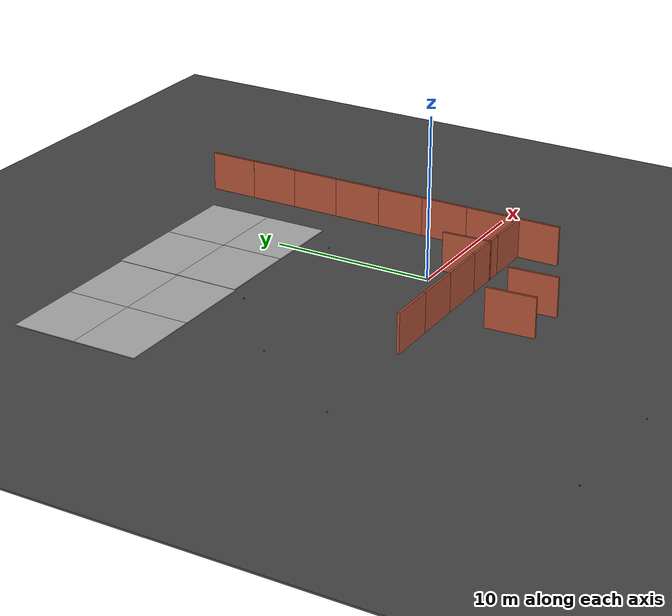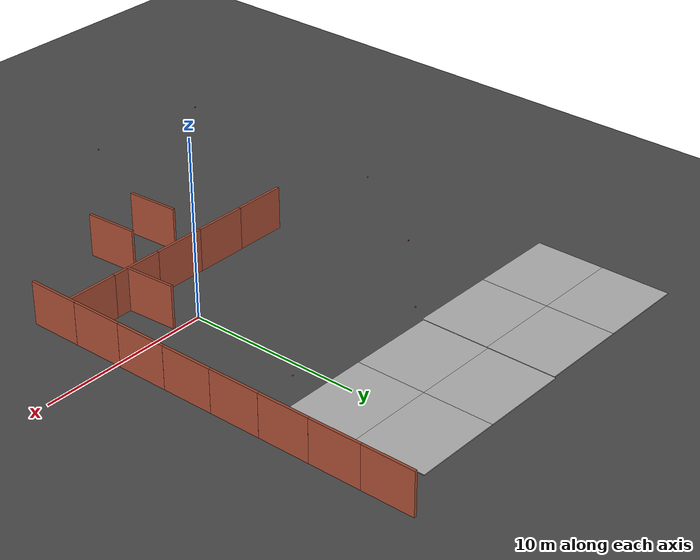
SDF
<sdf version="1.6">
 <world name="default">
  <scene>
   <sky><clouds><speed>5</speed></clouds></sky>
   <ambient>0.4 0.4 0.4 1</ambient>
   <background>0.7 0.7 0.7 1</background>
   <shadows>1</shadows>
  </scene>
  <light name="sun" type="directional">
   <pose>0 0 10 0 -0 0</pose>
   <diffuse>0.8 0.8 0.8 1</diffuse>
   <specular>0.2 0.2 0.2 1</specular>
   <attenuation>
    <range>1000</range>
    <constant>0.9</constant>
    <linear>0.01</linear>
    <quadratic>0.001</quadratic>
   </attenuation>
   <direction>-0.5 0.1 -0.9</direction>
  </light>
  <model name="ground_plane">
   <static>1</static>
   <link name="link">
    <collision name="collision">
     <geometry><plane><normal>0 0 1</normal><size>100 100</size></plane></geometry>
     <surface><friction><ode><mu>100</mu><mu2>50</mu2></ode></friction></surface>
    </collision>
    <visual name="visual">
     <cast_shadows>0</cast_shadows>
     <geometry><plane><normal>0 0 1</normal><size>100 100</size></plane></geometry>
     <material>
      <script><uri>file://media/materials/scripts/gazebo.material</uri><name>Gazebo/Grey</name></script>
     </material>
    </visual>
   </link>
  </model>
  <gravity>0 0 -9.8</gravity>
  <magnetic_field>6e-06 2.3e-05 -4.2e-05</magnetic_field>
  <atmosphere type="adiabatic"/>
  <physics name="default_physics" default="0" type="ode">
   <max_step_size>0.01</max_step_size>
   <real_time_factor>1</real_time_factor>
   <real_time_update_rate>100</real_time_update_rate>
  </physics>
  <scene><ambient>0.4 0.4 0.4 1</ambient><background>0.7 0.7 0.7 1</background><shadows>1</shadows></scene>
  <spherical_coordinates>
   <surface_model>EARTH_WGS84</surface_model>
   <latitude_deg>0</latitude_deg>
   <longitude_deg>0</longitude_deg>
   <elevation>0</elevation>
   <heading_deg>0</heading_deg>
  </spherical_coordinates>
  <model name="wall_brick_3m_clone_0">
   <pose>5.57817 -4.2114 0 0 -0 1.57</pose>
   <link name="Wall_2">
    <collision name="Wall_2_Collision">
     <geometry><box><size>3 0.15 2.5</size></box></geometry>
     <pose>0 0 1.25 0 -0 0</pose>
    </collision>
    <visual name="Wall_2_Visual">
     <pose>0 0 1.25 0 -0 0</pose>
     <geometry><box><size>3 0.15 2.5</size></box></geometry>
     <material>
      <script><uri>file://media/materials/scripts/gazebo.material</uri><name>Gazebo/Bricks</name></script>
      <ambient>1 1 1 1</ambient>
     </material>
     <meta><layer>0</layer></meta>
    </visual>
   </link>
   <static>1</static>
  </model>
  <model name="wall_brick_3m_clone_1">
   <pose>4.12513 -3.1 0 0 -0 0</pose>
   <link name="Wall_2">
    <collision name="Wall_2_Collision">
     <geometry><box><size>3 0.15 2.5</size></box></geometry>
     <pose>0 0 1.25 0 -0 0</pose>
    </collision>
    <visual name="Wall_2_Visual">
     <pose>0 0 1.25 0 -0 0</pose>
     <geometry><box><size>3 0.15 2.5</size></box></geometry>
     <material>
      <script><uri>file://media/materials/scripts/gazebo.material</uri><name>Gazebo/Bricks</name></script>
      <ambient>1 1 1 1</ambient>
     </material>
     <meta><layer>0</layer></meta>
    </visual>
   </link>
   <static>1</static>
  </model>
  <model name="wall_brick_3m_clone_1_clone">
   <pose>1.12513 -3.1 0 0 -0 0</pose>
   <link name="Wall_2">
    <collision name="Wall_2_Collision">
     <geometry><box><size>3 0.15 2.5</size></box></geometry>
     <pose>0 0 1.25 0 -0 0</pose>
    </collision>
    <visual name="Wall_2_Visual">
     <pose>0 0 1.25 0 -0 0</pose>
     <geometry><box><size>3 0.15 2.5</size></box></geometry>
     <material>
      <script><uri>file://media/materials/scripts/gazebo.material</uri><name>Gazebo/Bricks</name></script>
      <ambient>1 1 1 1</ambient>
     </material>
     <meta><layer>0</layer></meta>
    </visual>
   </link>
   <static>1</static>
  </model>
  <model name="wall_brick_3m_clone_1_clone_0">
   <pose>-1.87487 -3.1 0 0 -0 0</pose>
   <link name="Wall_2">
    <collision name="Wall_2_Collision">
     <geometry><box><size>3 0.15 2.5</size></box></geometry>
     <pose>0 0 1.25 0 -0 0</pose>
    </collision>
    <visual name="Wall_2_Visual">
     <pose>0 0 1.25 0 -0 0</pose>
     <geometry><box><size>3 0.15 2.5</size></box></geometry>
     <material>
      <script><uri>file://media/materials/scripts/gazebo.material</uri><name>Gazebo/Bricks</name></script>
      <ambient>1 1 1 1</ambient>
     </material>
     <meta><layer>0</layer></meta>
    </visual>
   </link>
   <static>1</static>
  </model>
  <model name="wall_brick_3m_clone_1_clone_1">
   <pose>-4.87487 -3.1 0 0 -0 0</pose>
   <link name="Wall_2">
    <collision name="Wall_2_Collision">
     <geometry><box><size>3 0.15 2.5</size></box></geometry>
     <pose>0 0 1.25 0 -0 0</pose>
    </collision>
    <visual name="Wall_2_Visual">
     <pose>0 0 1.25 0 -0 0</pose>
     <geometry><box><size>3 0.15 2.5</size></box></geometry>
     <material>
      <script><uri>file://media/materials/scripts/gazebo.material</uri><name>Gazebo/Bricks</name></script>
      <ambient>1 1 1 1</ambient>
     </material>
     <meta><layer>0</layer></meta>
    </visual>
   </link>
   <static>1</static>
  </model>
  <model name="wall_brick_3m_clone_1_clone_1_clone">
   <pose>-7.87487 -3.11682 0 0 -0 0</pose>
   <link name="Wall_2">
    <collision name="Wall_2_Collision">
     <geometry><box><size>3 0.15 2.5</size></box></geometry>
     <pose>0 0 1.25 0 -0 0</pose>
    </collision>
    <visual name="Wall_2_Visual">
     <pose>0 0 1.25 0 -0 0</pose>
     <geometry><box><size>3 0.15 2.5</size></box></geometry>
     <material>
      <script><uri>file://media/materials/scripts/gazebo.material</uri><name>Gazebo/Bricks</name></script>
      <ambient>1 1 1 1</ambient>
     </material>
     <meta><layer>0</layer></meta>
    </visual>
   </link>
   <static>1</static>
  </model>
  <model name="wall_brick_3m_clone_0_clone">
   <pose>5.57817 -1.21128 0 0 -0 1.57</pose>
   <link name="Wall_2">
    <collision name="Wall_2_Collision">
     <geometry><box><size>3 0.15 2.5</size></box></geometry>
     <pose>0 0 1.25 0 -0 0</pose>
    </collision>
    <visual name="Wall_2_Visual">
     <pose>0 0 1.25 0 -0 0</pose>
     <geometry><box><size>3 0.15 2.5</size></box></geometry>
     <material>
      <script><uri>file://media/materials/scripts/gazebo.material</uri><name>Gazebo/Bricks</name></script>
      <ambient>1 1 1 1</ambient>
     </material>
     <meta><layer>0</layer></meta>
    </visual>
   </link>
   <static>1</static>
  </model>
  <model name="wall_brick_3m_clone_0_clone_clone">
   <pose>5.57817 1.78884 0 0 -0 1.57</pose>
   <link name="Wall_2">
    <collision name="Wall_2_Collision">
     <geometry><box><size>3 0.15 2.5</size></box></geometry>
     <pose>0 0 1.25 0 -0 0</pose>
    </collision>
    <visual name="Wall_2_Visual">
     <pose>0 0 1.25 0 -0 0</pose>
     <geometry><box><size>3 0.15 2.5</size></box></geometry>
     <material>
      <script><uri>file://media/materials/scripts/gazebo.material</uri><name>Gazebo/Bricks</name></script>
      <ambient>1 1 1 1</ambient>
     </material>
     <meta><layer>0</layer></meta>
    </visual>
   </link>
   <static>1</static>
  </model>
  <model name="wall_brick_3m_clone_0_clone_clone_0">
   <pose>5.57817 4.78896 0 0 -0 1.57</pose>
   <link name="Wall_2">
    <collision name="Wall_2_Collision">
     <geometry><box><size>3 0.15 2.5</size></box></geometry>
     <pose>0 0 1.25 0 -0 0</pose>
    </collision>
    <visual name="Wall_2_Visual">
     <pose>0 0 1.25 0 -0 0</pose>
     <geometry><box><size>3 0.15 2.5</size></box></geometry>
     <material>
      <script><uri>file://media/materials/scripts/gazebo.material</uri><name>Gazebo/Bricks</name></script>
      <ambient>1 1 1 1</ambient>
     </material>
     <meta><layer>0</layer></meta>
    </visual>
   </link>
   <static>1</static>
  </model>
  <model name="wall_brick_3m_clone_0_clone_clone_0_clone">
   <pose>5.57817 7.78908 0 0 -0 1.57</pose>
   <link name="Wall_2">
    <collision name="Wall_2_Collision">
     <geometry><box><size>3 0.15 2.5</size></box></geometry>
     <pose>0 0 1.25 0 -0 0</pose>
    </collision>
    <visual name="Wall_2_Visual">
     <pose>0 0 1.25 0 -0 0</pose>
     <geometry><box><size>3 0.15 2.5</size></box></geometry>
     <material>
      <script><uri>file://media/materials/scripts/gazebo.material</uri><name>Gazebo/Bricks</name></script>
      <ambient>1 1 1 1</ambient>
     </material>
     <meta><layer>0</layer></meta>
    </visual>
   </link>
   <static>1</static>
  </model>
  <model name="wall_brick_3m_clone_0_clone_clone_0_clone_clone">
   <pose>5.57817 10.7892 0 0 -0 1.57</pose>
   <link name="Wall_2">
    <collision name="Wall_2_Collision">
     <geometry><box><size>3 0.15 2.5</size></box></geometry>
     <pose>0 0 1.25 0 -0 0</pose>
    </collision>
    <visual name="Wall_2_Visual">
     <pose>0 0 1.25 0 -0 0</pose>
     <geometry><box><size>3 0.15 2.5</size></box></geometry>
     <material>
      <script><uri>file://media/materials/scripts/gazebo.material</uri><name>Gazebo/Bricks</name></script>
      <ambient>1 1 1 1</ambient>
     </material>
     <meta><layer>0</layer></meta>
    </visual>
   </link>
   <static>1</static>
  </model>
  <model name="wall_brick_3m_clone_0_clone_clone_0_clone_clone_0">
   <pose>5.57817 13.7893 0 0 -0 1.57</pose>
   <link name="Wall_2">
    <collision name="Wall_2_Collision">
     <geometry><box><size>3 0.15 2.5</size></box></geometry>
     <pose>0 0 1.25 0 -0 0</pose>
    </collision>
    <visual name="Wall_2_Visual">
     <pose>0 0 1.25 0 -0 0</pose>
     <geometry><box><size>3 0.15 2.5</size></box></geometry>
     <material>
      <script><uri>file://media/materials/scripts/gazebo.material</uri><name>Gazebo/Bricks</name></script>
      <ambient>1 1 1 1</ambient>
     </material>
     <meta><layer>0</layer></meta>
    </visual>
   </link>
   <static>1</static>
  </model>
  <model name="wall_brick_3m_clone_0_clone_clone_0_clone_clone_0_clone">
   <pose>5.57817 16.7894 0 0 -0 1.57</pose>
   <link name="Wall_2">
    <collision name="Wall_2_Collision">
     <geometry><box><size>3 0.15 2.5</size></box></geometry>
     <pose>0 0 1.25 0 -0 0</pose>
    </collision>
    <visual name="Wall_2_Visual">
     <pose>0 0 1.25 0 -0 0</pose>
     <geometry><box><size>3 0.15 2.5</size></box></geometry>
     <material>
      <script><uri>file://media/materials/scripts/gazebo.material</uri><name>Gazebo/Bricks</name></script>
      <ambient>1 1 1 1</ambient>
     </material>
     <meta><layer>0</layer></meta>
    </visual>
   </link>
   <static>1</static>
  </model>
  <model name="asphalt_plane">
   <static>1</static>
   <link name="link">
    <collision name="collision"><geometry><box><size>98.0294 91.5637 0.1</size></box></geometry></collision>
    <visual name="visual">
     <cast_shadows>0</cast_shadows>
     <geometry><box><size>98.0294 91.5637 0.1</size></box></geometry>
     <material>
      <script>
       <uri>model://asphalt_plane/materials/scripts</uri>
       <uri>model://asphalt_plane/materials/textures</uri>
       <name>vrc/asphalt</name>
      </script>
     </material>
    </visual>
   </link>
   <pose>-4.61095 0.882078 0 0 -0 0</pose>
  </model>
  <audio><device>default</device></audio>
  <model name="cricket_ball_clone_clone">
   <link name="link">
    <pose>0 0 0.0375 0 -0 0</pose>
    <inertial>
     <mass>0.1467</mass>
     <inertia>
      <ixx>8.25187e-05</ixx>
      <ixy>0</ixy>
      <ixz>0</ixz>
      <iyy>8.25187e-05</iyy>
      <iyz>0</iyz>
      <izz>8.25187e-05</izz>
     </inertia>
    </inertial>
    <collision name="collision">
     <geometry><sphere><radius>0.0375</radius></sphere></geometry>
     <surface>
      <contact>
       <poissons_ratio>0.347</poissons_ratio>
       <elastic_modulus>8.8e+09</elastic_modulus>
       <ode><kp>100000</kp><kd>100</kd><max_vel>100</max_vel><min_depth>0.001</min_depth></ode>
      </contact>
      <friction>
       <torsional>
        <coefficient>1</coefficient>
        <use_patch_radius>0</use_patch_radius>
        <surface_radius>0.01</surface_radius>
       </torsional>
      </friction>
     </surface>
    </collision>
    <visual name="visual">
     <geometry><sphere><radius>0.0375</radius></sphere></geometry>
     <material>
      <script><uri>file://media/materials/scripts/gazebo.material</uri><name>Gazebo/Red</name></script>
     </material>
    </visual>
    <velocity_decay><linear>0</linear><angular>0.005</angular></velocity_decay>
   </link>
   <pose>-9.39749 -17.2998 0.048986 0 -0 0</pose>
  </model>
  <model name="cricket_ball_clone_clone_0">
   <link name="link">
    <pose>0 0 0.0375 0 -0 0</pose>
    <inertial>
     <mass>0.1467</mass>
     <inertia>
      <ixx>8.25187e-05</ixx>
      <ixy>0</ixy>
      <ixz>0</ixz>
      <iyy>8.25187e-05</iyy>
      <iyz>0</iyz>
      <izz>8.25187e-05</izz>
     </inertia>
    </inertial>
    <collision name="collision">
     <geometry><sphere><radius>0.0375</radius></sphere></geometry>
     <surface>
      <contact>
       <poissons_ratio>0.347</poissons_ratio>
       <elastic_modulus>8.8e+09</elastic_modulus>
       <ode><kp>100000</kp><kd>100</kd><max_vel>100</max_vel><min_depth>0.001</min_depth></ode>
      </contact>
      <friction>
       <torsional>
        <coefficient>1</coefficient>
        <use_patch_radius>0</use_patch_radius>
        <surface_radius>0.01</surface_radius>
       </torsional>
      </friction>
     </surface>
    </collision>
    <visual name="visual">
     <geometry><sphere><radius>0.0375</radius></sphere></geometry>
     <material>
      <script><uri>file://media/materials/scripts/gazebo.material</uri><name>Gazebo/Red</name></script>
     </material>
    </visual>
    <velocity_decay><linear>0</linear><angular>0.005</angular></velocity_decay>
   </link>
   <pose>-17.1236 -17.0177 0.048986 0 -0 0</pose>
  </model>
  <model name="cricket_ball_clone_0_clone_clone_clone">
   <link name="link">
    <pose>0 0 0.0375 0 -0 0</pose>
    <inertial>
     <mass>0.1467</mass>
     <inertia>
      <ixx>8.25187e-05</ixx>
      <ixy>0</ixy>
      <ixz>0</ixz>
      <iyy>8.25187e-05</iyy>
      <iyz>0</iyz>
      <izz>8.25187e-05</izz>
     </inertia>
    </inertial>
    <collision name="collision">
     <geometry><sphere><radius>0.0375</radius></sphere></geometry>
     <surface>
      <contact>
       <poissons_ratio>0.347</poissons_ratio>
       <elastic_modulus>8.8e+09</elastic_modulus>
       <ode><kp>100000</kp><kd>100</kd><max_vel>100</max_vel><min_depth>0.001</min_depth></ode>
      </contact>
      <friction>
       <torsional>
        <coefficient>1</coefficient>
        <use_patch_radius>0</use_patch_radius>
        <surface_radius>0.01</surface_radius>
       </torsional>
      </friction>
     </surface>
    </collision>
    <visual name="visual">
     <geometry><sphere><radius>0.0375</radius></sphere></geometry>
     <material>
      <script><uri>file://media/materials/scripts/gazebo.material</uri><name>Gazebo/Red</name></script>
     </material>
    </visual>
    <velocity_decay><linear>0</linear><angular>0.005</angular></velocity_decay>
   </link>
   <pose>-16.8609 -3.13226 0.087917 1.67009 1.17549 -1.11534</pose>
  </model>
  <model name="cricket_ball_clone_4_clone_clone_clone_clone">
   <link name="link">
    <pose>0 0 0.0375 0 -0 0</pose>
    <inertial>
     <mass>0.1467</mass>
     <inertia>
      <ixx>8.25187e-05</ixx>
      <ixy>0</ixy>
      <ixz>0</ixz>
      <iyy>8.25187e-05</iyy>
      <iyz>0</iyz>
      <izz>8.25187e-05</izz>
     </inertia>
    </inertial>
    <collision name="collision">
     <geometry><sphere><radius>0.0375</radius></sphere></geometry>
     <surface>
      <contact>
       <poissons_ratio>0.347</poissons_ratio>
       <elastic_modulus>8.8e+09</elastic_modulus>
       <ode><kp>100000</kp><kd>100</kd><max_vel>100</max_vel><min_depth>0.001</min_depth></ode>
      </contact>
      <friction>
       <torsional>
        <coefficient>1</coefficient>
        <use_patch_radius>0</use_patch_radius>
        <surface_radius>0.01</surface_radius>
       </torsional>
      </friction>
     </surface>
    </collision>
    <visual name="visual">
     <geometry><sphere><radius>0.0375</radius></sphere></geometry>
     <material>
      <script><uri>file://media/materials/scripts/gazebo.material</uri><name>Gazebo/Red</name></script>
     </material>
    </visual>
    <velocity_decay><linear>0</linear><angular>0.005</angular></velocity_decay>
   </link>
   <pose>-7.68604 7.69209 0.048986 0 -0 0</pose>
  </model>
  <model name="cricket_ball_clone_4_clone_clone_clone_0_clone">
   <link name="link">
    <pose>0 0 0.0375 0 -0 0</pose>
    <inertial>
     <mass>0.1467</mass>
     <inertia>
      <ixx>8.25187e-05</ixx>
      <ixy>0</ixy>
      <ixz>0</ixz>
      <iyy>8.25187e-05</iyy>
      <iyz>0</iyz>
      <izz>8.25187e-05</izz>
     </inertia>
    </inertial>
    <collision name="collision">
     <geometry><sphere><radius>0.0375</radius></sphere></geometry>
     <surface>
      <contact>
       <poissons_ratio>0.347</poissons_ratio>
       <elastic_modulus>8.8e+09</elastic_modulus>
       <ode><kp>100000</kp><kd>100</kd><max_vel>100</max_vel><min_depth>0.001</min_depth></ode>
      </contact>
      <friction>
       <torsional>
        <coefficient>1</coefficient>
        <use_patch_radius>0</use_patch_radius>
        <surface_radius>0.01</surface_radius>
       </torsional>
      </friction>
     </surface>
    </collision>
    <visual name="visual">
     <geometry><sphere><radius>0.0375</radius></sphere></geometry>
     <material>
      <script><uri>file://media/materials/scripts/gazebo.material</uri><name>Gazebo/Red</name></script>
     </material>
    </visual>
    <velocity_decay><linear>0</linear><angular>0.005</angular></velocity_decay>
   </link>
   <pose>0.912708 7.11355 0.048986 0 -0 0</pose>
  </model>
  <model name="wall_brick_3m_clone_1_clone_1_clone_clone">
   <pose>1.60488 -1.68672 0 0 0 -1.51691</pose>
   <link name="Wall_2">
    <collision name="Wall_2_Collision">
     <geometry><box><size>3 0.15 2.5</size></box></geometry>
     <pose>0 0 1.25 0 -0 0</pose>
    </collision>
    <visual name="Wall_2_Visual">
     <pose>0 0 1.25 0 -0 0</pose>
     <geometry><box><size>3 0.15 2.5</size></box></geometry>
     <material>
      <script><uri>file://media/materials/scripts/gazebo.material</uri><name>Gazebo/Bricks</name></script>
      <ambient>1 1 1 1</ambient>
     </material>
     <meta><layer>0</layer></meta>
    </visual>
   </link>
   <static>1</static>
  </model>
  <model name="mud_box_clone_clone_clone">
   <static>1</static>
   <link name="link">
    <collision name="collision"><geometry><box><size>8 10 0.2</size></box></geometry></collision>
    <visual name="visual_1">
     <pose>-2 2.5 0 0 -0 0</pose>
     <cast_shadows>0</cast_shadows>
     <geometry><box><size>4 5 0.2</size></box></geometry>
     <material>
      <script>
       <uri>model://mud_box/materials/scripts</uri>
       <uri>model://mud_box/materials/textures</uri>
       <name>vrc/mud</name>
      </script>
     </material>
    </visual>
    <visual name="visual_2">
     <pose>2 2.5 0 0 -0 0</pose>
     <cast_shadows>0</cast_shadows>
     <geometry><box><size>4 5 0.2</size></box></geometry>
     <material>
      <script>
       <uri>model://mud_box/materials/scripts</uri>
       <uri>model://mud_box/materials/textures</uri>
       <name>vrc/mud</name>
      </script>
     </material>
    </visual>
    <visual name="visual_3">
     <pose>2 -2.5 0 0 -0 0</pose>
     <cast_shadows>0</cast_shadows>
     <geometry><box><size>4 5 0.2</size></box></geometry>
     <material>
      <script>
       <uri>model://mud_box/materials/scripts</uri>
       <uri>model://mud_box/materials/textures</uri>
       <name>vrc/mud</name>
      </script>
     </material>
    </visual>
    <visual name="visual_4">
     <pose>-2 -2.5 0 0 -0 0</pose>
     <cast_shadows>0</cast_shadows>
     <geometry><box><size>4 5 0.2</size></box></geometry>
     <material>
      <script>
       <uri>model://mud_box/materials/scripts</uri>
       <uri>model://mud_box/materials/textures</uri>
       <name>vrc/mud</name>
      </script>
     </material>
    </visual>
   </link>
   <pose>-1.96521 12.7675 0 0 0 -1.57229</pose>
  </model>
  <model name="mud_box_clone_clone_clone_0">
   <static>1</static>
   <link name="link">
    <collision name="collision"><geometry><box><size>8 10 0.2</size></box></geometry></collision>
    <visual name="visual_1">
     <pose>-2 2.5 0 0 -0 0</pose>
     <cast_shadows>0</cast_shadows>
     <geometry><box><size>4 5 0.2</size></box></geometry>
     <material>
      <script>
       <uri>model://mud_box/materials/scripts</uri>
       <uri>model://mud_box/materials/textures</uri>
       <name>vrc/mud</name>
      </script>
     </material>
    </visual>
    <visual name="visual_2">
     <pose>2 2.5 0 0 -0 0</pose>
     <cast_shadows>0</cast_shadows>
     <geometry><box><size>4 5 0.2</size></box></geometry>
     <material>
      <script>
       <uri>model://mud_box/materials/scripts</uri>
       <uri>model://mud_box/materials/textures</uri>
       <name>vrc/mud</name>
      </script>
     </material>
    </visual>
    <visual name="visual_3">
     <pose>2 -2.5 0 0 -0 0</pose>
     <cast_shadows>0</cast_shadows>
     <geometry><box><size>4 5 0.2</size></box></geometry>
     <material>
      <script>
       <uri>model://mud_box/materials/scripts</uri>
       <uri>model://mud_box/materials/textures</uri>
       <name>vrc/mud</name>
      </script>
     </material>
    </visual>
    <visual name="visual_4">
     <pose>-2 -2.5 0 0 -0 0</pose>
     <cast_shadows>0</cast_shadows>
     <geometry><box><size>4 5 0.2</size></box></geometry>
     <material>
      <script>
       <uri>model://mud_box/materials/scripts</uri>
       <uri>model://mud_box/materials/textures</uri>
       <name>vrc/mud</name>
      </script>
     </material>
    </visual>
   </link>
   <pose>-12.0026 12.683 0 0 0 -1.57229</pose>
  </model>
  <model name="cricket_ball_clone_4_clone_clone_clone_clone_clone">
   <link name="link">
    <pose>0 0 0.0375 0 -0 0</pose>
    <inertial>
     <mass>0.1467</mass>
     <inertia>
      <ixx>8.25187e-05</ixx>
      <ixy>0</ixy>
      <ixz>0</ixz>
      <iyy>8.25187e-05</iyy>
      <iyz>0</iyz>
      <izz>8.25187e-05</izz>
     </inertia>
    </inertial>
    <collision name="collision">
     <geometry><sphere><radius>0.0375</radius></sphere></geometry>
     <surface>
      <contact>
       <poissons_ratio>0.347</poissons_ratio>
       <elastic_modulus>8.8e+09</elastic_modulus>
       <ode><kp>100000</kp><kd>100</kd><max_vel>100</max_vel><min_depth>0.001</min_depth></ode>
      </contact>
      <friction>
       <torsional>
        <coefficient>1</coefficient>
        <use_patch_radius>0</use_patch_radius>
        <surface_radius>0.01</surface_radius>
       </torsional>
      </friction>
     </surface>
    </collision>
    <visual name="visual">
     <geometry><sphere><radius>0.0375</radius></sphere></geometry>
     <material>
      <script><uri>file://media/materials/scripts/gazebo.material</uri><name>Gazebo/Red</name></script>
     </material>
    </visual>
    <velocity_decay><linear>0</linear><angular>0.005</angular></velocity_decay>
   </link>
   <pose>-12.7304 3.18653 0.048986 0 -0 0</pose>
  </model>
  <model name="wall_brick_3m_clone_1_clone_1_clone_clone_clone_0_clone">
   <pose>-0.961173 -7.088 0 0 0 -1.51691</pose>
   <link name="Wall_2">
    <collision name="Wall_2_Collision">
     <geometry><box><size>3 0.15 2.5</size></box></geometry>
     <pose>0 0 1.25 0 -0 0</pose>
    </collision>
    <visual name="Wall_2_Visual">
     <pose>0 0 1.25 0 -0 0</pose>
     <geometry><box><size>3 0.15 2.5</size></box></geometry>
     <material>
      <script><uri>file://media/materials/scripts/gazebo.material</uri><name>Gazebo/Bricks</name></script>
      <ambient>1 1 1 1</ambient>
     </material>
     <meta><layer>0</layer></meta>
    </visual>
   </link>
   <static>1</static>
  </model>
  <model name="wall_brick_3m_clone_1_clone_1_clone_clone_clone_0_clone_clone">
   <pose>-3.97704 -7.14064 0 0 0 -1.51691</pose>
   <link name="Wall_2">
    <collision name="Wall_2_Collision">
     <geometry><box><size>3 0.15 2.5</size></box></geometry>
     <pose>0 0 1.25 0 -0 0</pose>
    </collision>
    <visual name="Wall_2_Visual">
     <pose>0 0 1.25 0 -0 0</pose>
     <geometry><box><size>3 0.15 2.5</size></box></geometry>
     <material>
      <script><uri>file://media/materials/scripts/gazebo.material</uri><name>Gazebo/Bricks</name></script>
      <ambient>1 1 1 1</ambient>
     </material>
     <meta><layer>0</layer></meta>
    </visual>
   </link>
   <static>1</static>
  </model>
 </world>
</sdf>
